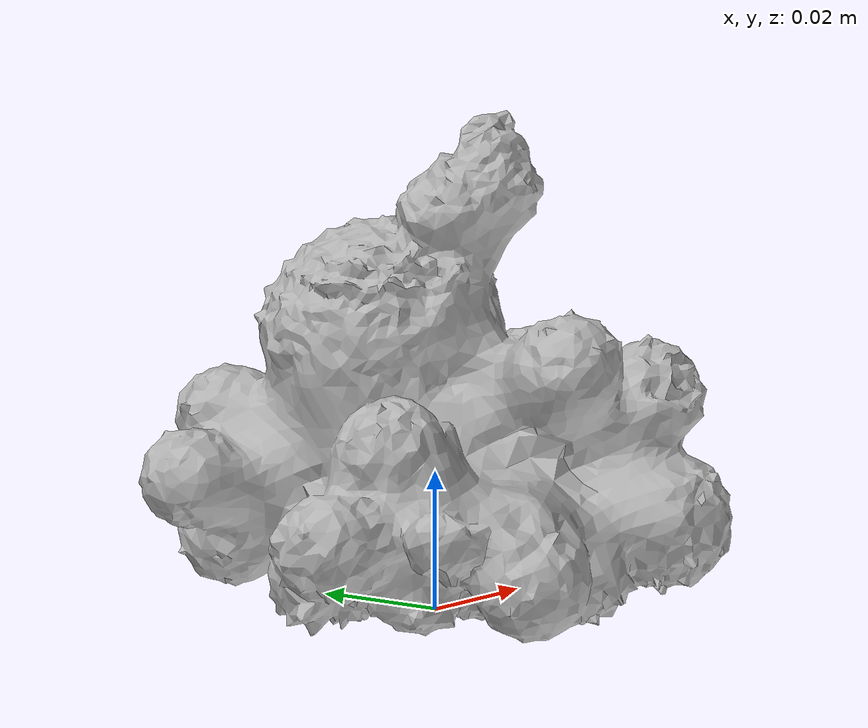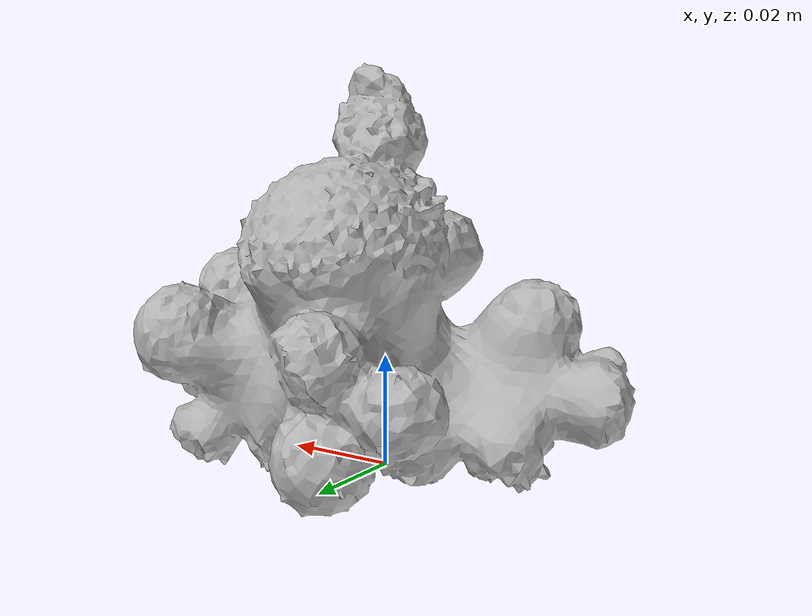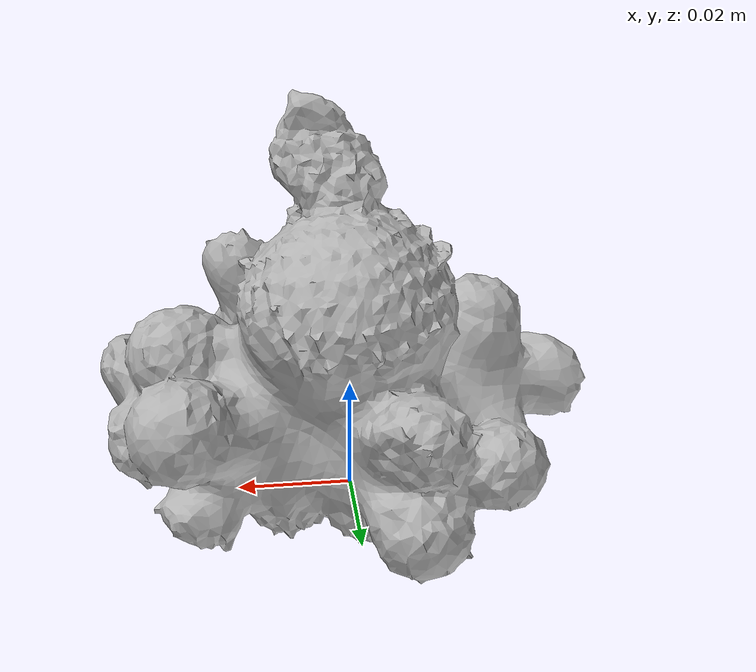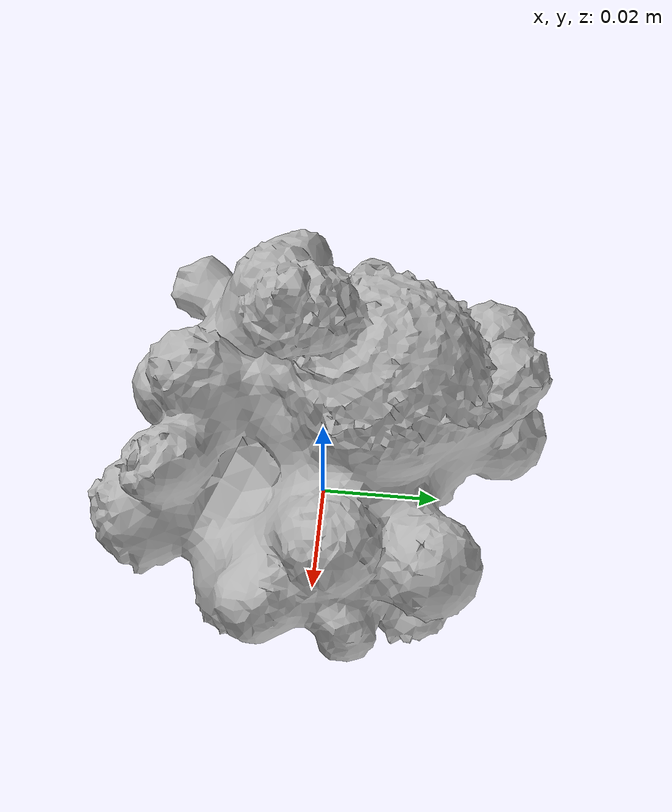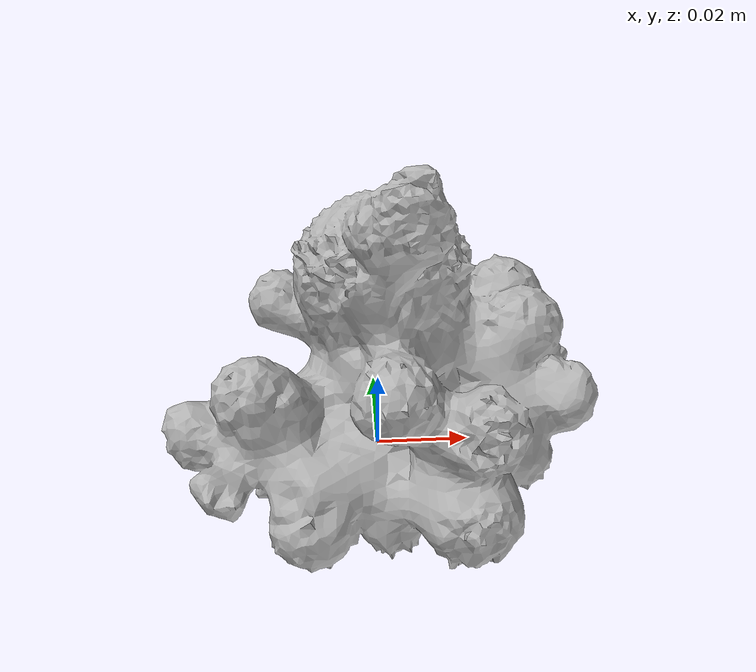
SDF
<?xml version="1.0" ?>
<sdf version='1.8'>
  <model name='ycb_063-a_marbles'>
    <link name='body'>
      <inertial>
        <mass>0.147014220949</mass>
        <pose>0.00312497879 0.000526333637 0.0224929241 0 0 0</pose>
        <inertia>
          <ixx>6.38004707251e-05</ixx>
          <ixy>-6.81762784831e-07</ixy>
          <ixz>-1.20609896884e-06</ixz>
          <iyy>6.58418109571e-05</iyy>
          <iyz>-5.30422053744e-06</iyz>
          <izz>7.69249171026e-05</izz>
        </inertia>
      </inertial>
      <visual name='ycb_063-a_marbles_visual'>
        <pose>0.005875 -0.028639 0.000339 0 0 0</pose>
        <geometry>
          <mesh>
            <uri>model://ycb_063-a_marbles/meshes/textured.dae</uri>
          </mesh>
        </geometry>
      </visual>
      <collision name='ycb_063-a_marbles_collision'>
        <pose>0.005875 -0.028639 0.000339 0 0 0</pose>
        <geometry>
          <mesh>
            <uri>model://ycb_063-a_marbles/meshes/nontextured.stl</uri>
          </mesh>
        </geometry>
        <max_contacts>10</max_contacts>
        <surface>
          <contact>
            <ode>
              <kp>1e15</kp>
              <kd>1e13</kd>
            </ode>
          </contact>
        </surface>
      </collision>
    </link>
  </model>
</sdf>
